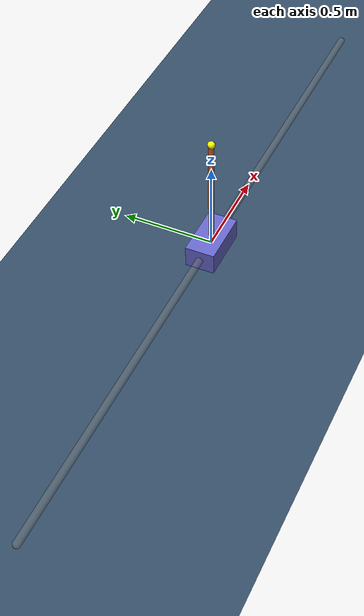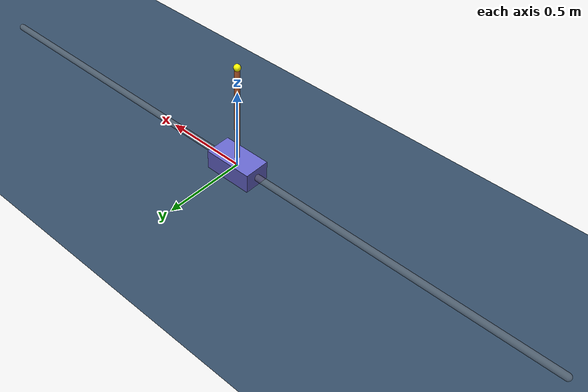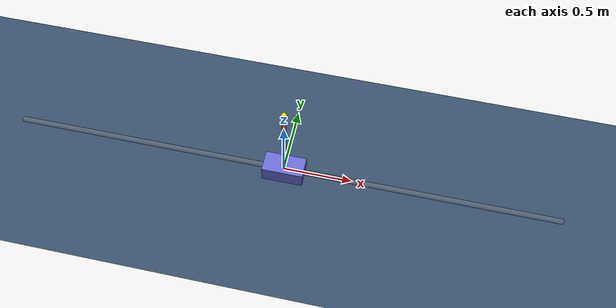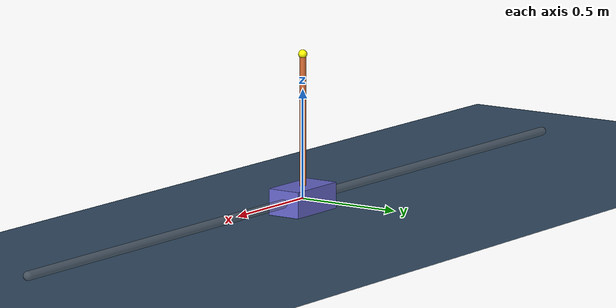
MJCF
<!-- MuJoCo MJCF: Cart-Pole (Inverted Pendulum on a Cart)
     A single pole balanced on a sliding cart.
     Classic control benchmark; policy goal: keep pole upright.
-->
<mujoco model="cartpole">

  <option timestep="0.02" gravity="0 0 -9.81" integrator="RK4"/>

  <asset>
    <texture type="skybox" builtin="gradient" rgb1="0.3 0.5 0.7" rgb2="0 0 0"
             width="512" height="512"/>
    <texture name="grid" type="2d" builtin="checker"
             rgb1="0.15 0.25 0.35" rgb2="0.25 0.35 0.45"
             width="300" height="300" mark="edge" markrgb=".2 .3 .4"/>
    <material name="grid" texture="grid" texrepeat="1 1" texuniform="true" reflectance=".2"/>
    <material name="cart" rgba="0.4 0.4 0.8 1"/>
    <material name="pole" rgba="0.8 0.4 0.2 1"/>
  </asset>

  <worldbody>
    <light pos="0 0 3" dir="0 0 -1"/>
    <geom name="floor" type="plane" size="3 1 0.1" material="grid" pos="0 0 -0.1"/>

    <!-- Track (visual only) -->
    <geom name="track" type="capsule" fromto="-2 0 0 2 0 0"
          size="0.02" rgba="0.5 0.5 0.5 0.4"/>

    <body name="cart" pos="0 0 0">
      <!-- Slide along the track (X axis) -->
      <joint name="slider" type="slide" axis="1 0 0"
             limited="true" range="-2 2" damping="0.05"/>
      <geom name="cart_geom" type="box" size="0.15 0.08 0.06"
            material="cart" mass="1.0"/>

      <body name="pole" pos="0 0 0.06">
        <joint name="hinge" type="hinge" axis="0 1 0" pos="0 0 0"
               limited="false" damping="0.01" armature="0.005"/>
        <geom name="pole_geom" type="capsule" fromto="0 0 0 0 0 0.6"
              size="0.015" material="pole" mass="0.1"/>
        <site name="pole_tip" pos="0 0 0.6" size="0.02" rgba="1 1 0 1"/>
      </body>
    </body>
  </worldbody>

  <actuator>
    <!-- Horizontal force on the cart -->
    <motor name="slide_motor" joint="slider" gear="1"
           ctrllimited="true" ctrlrange="-10 10"/>
  </actuator>

  <sensor>
    <jointpos  name="x_cart"    joint="slider"/>
    <jointvel  name="dx_cart"   joint="slider"/>
    <jointpos  name="theta"     joint="hinge"/>
    <jointvel  name="dtheta"    joint="hinge"/>
  </sensor>

</mujoco>
